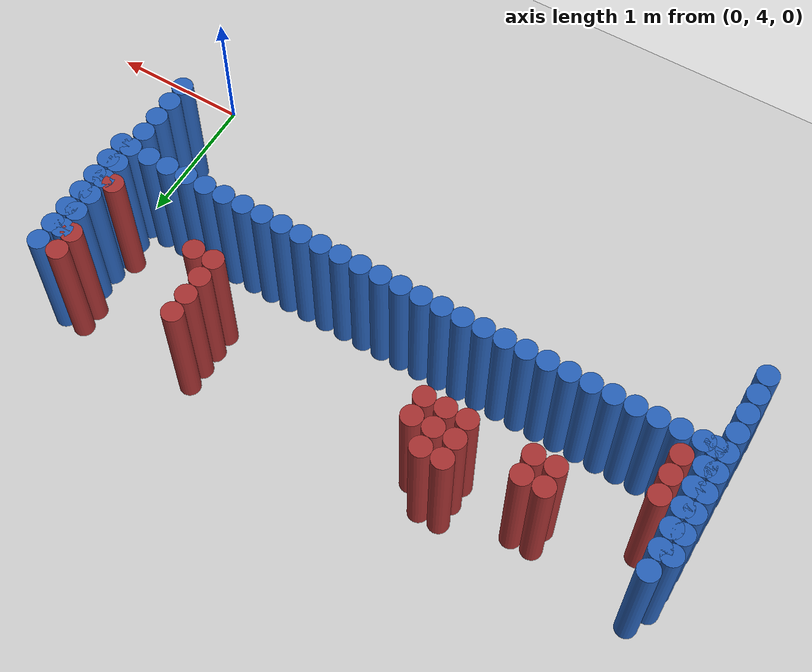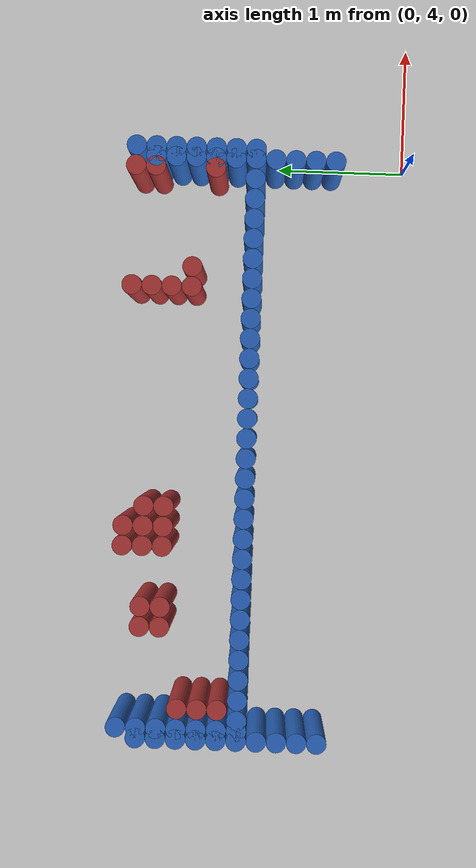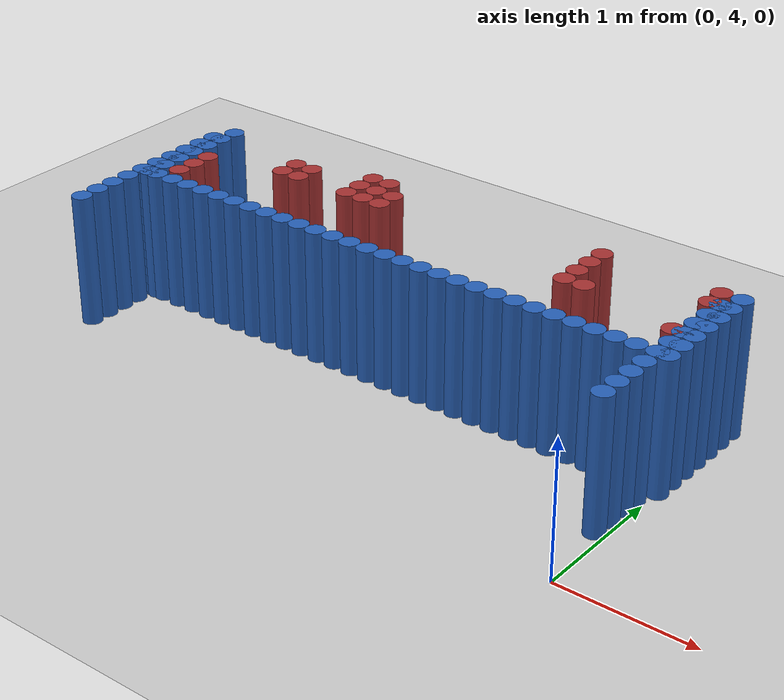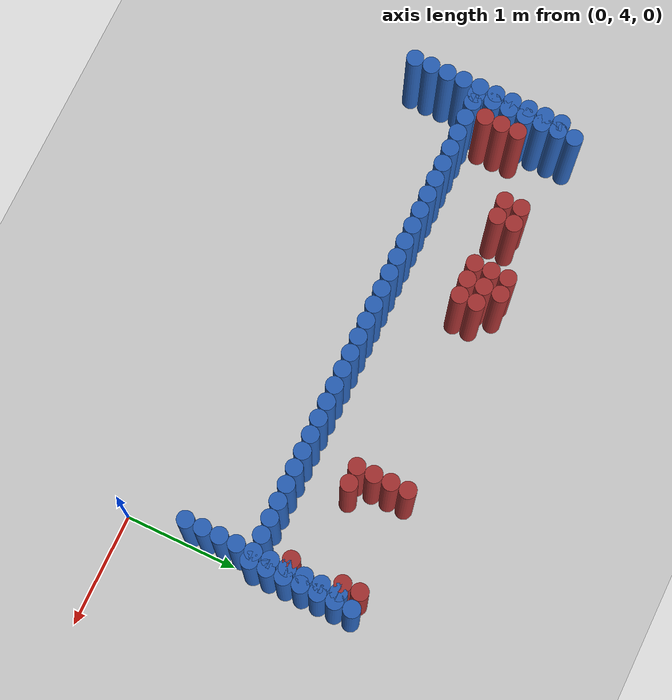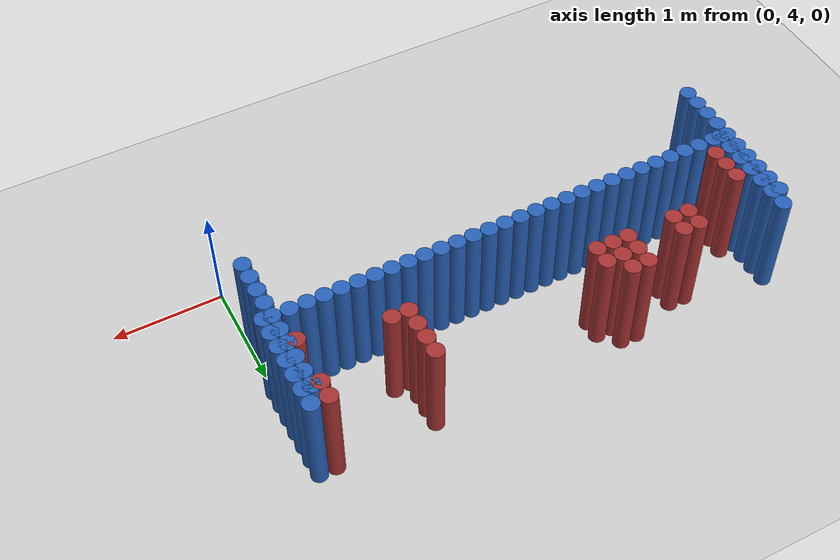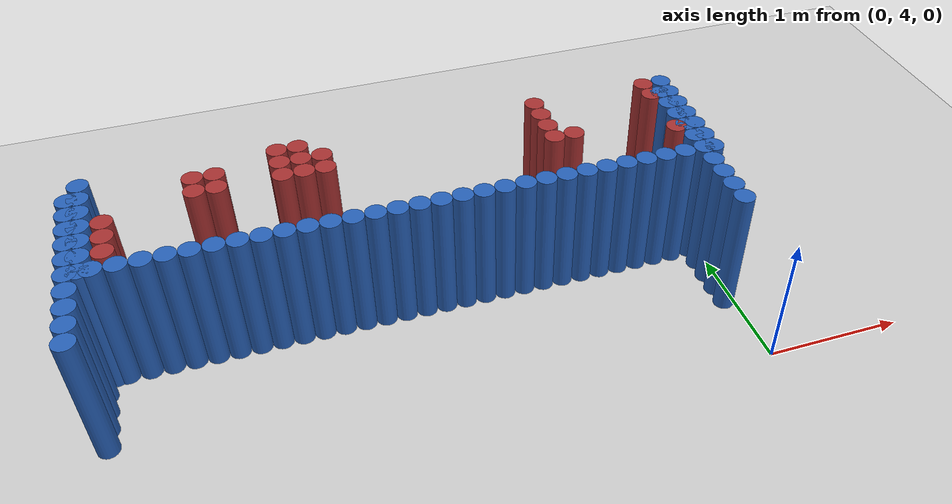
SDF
<sdf version="1.6">
 <world name="barn_world">
  <model name="ground_plane">
   <static>1</static>
   <link name="link">
    <collision name="collision">
     <geometry><plane><normal>0 0 1</normal><size>100 100</size></plane></geometry>
    </collision>
    <visual name="visual">
     <geometry><plane><normal>0 0 1</normal><size>100 100</size></plane></geometry>
     <material>
      <script><uri>file://media/materials/scripts/gazebo.material</uri><name>Gazebo/Grey</name></script>
     </material>
    </visual>
   </link>
  </model>
  <model name="unit_cylinder_88">
   <static>1</static>
   <pose>-0.0750 4.5750 0.5 0 0 0</pose>
   <link name="link">
    <collision name="collision">
     <geometry><cylinder><radius>0.075</radius><length>1</length></cylinder></geometry>
    </collision>
    <visual name="visual">
     <geometry><cylinder><radius>0.075</radius><length>1</length></cylinder></geometry>
     <material><ambient>0.152 0.379 0.72 1</ambient><diffuse>0.152 0.379 0.72 1</diffuse></material>
    </visual>
   </link>
  </model>
  <model name="unit_cylinder_89">
   <static>1</static>
   <pose>-4.4250 4.5750 0.5 0 0 0</pose>
   <link name="link">
    <collision name="collision">
     <geometry><cylinder><radius>0.075</radius><length>1</length></cylinder></geometry>
    </collision>
    <visual name="visual">
     <geometry><cylinder><radius>0.075</radius><length>1</length></cylinder></geometry>
     <material><ambient>0.152 0.379 0.72 1</ambient><diffuse>0.152 0.379 0.72 1</diffuse></material>
    </visual>
   </link>
  </model>
  <model name="unit_cylinder_90">
   <static>1</static>
   <pose>-0.0750 4.7250 0.5 0 0 0</pose>
   <link name="link">
    <collision name="collision">
     <geometry><cylinder><radius>0.075</radius><length>1</length></cylinder></geometry>
    </collision>
    <visual name="visual">
     <geometry><cylinder><radius>0.075</radius><length>1</length></cylinder></geometry>
     <material><ambient>0.152 0.379 0.72 1</ambient><diffuse>0.152 0.379 0.72 1</diffuse></material>
    </visual>
   </link>
  </model>
  <model name="unit_cylinder_91">
   <static>1</static>
   <pose>-4.4250 4.7250 0.5 0 0 0</pose>
   <link name="link">
    <collision name="collision">
     <geometry><cylinder><radius>0.075</radius><length>1</length></cylinder></geometry>
    </collision>
    <visual name="visual">
     <geometry><cylinder><radius>0.075</radius><length>1</length></cylinder></geometry>
     <material><ambient>0.152 0.379 0.72 1</ambient><diffuse>0.152 0.379 0.72 1</diffuse></material>
    </visual>
   </link>
  </model>
  <model name="unit_cylinder_92">
   <static>1</static>
   <pose>-0.0750 4.8750 0.5 0 0 0</pose>
   <link name="link">
    <collision name="collision">
     <geometry><cylinder><radius>0.075</radius><length>1</length></cylinder></geometry>
    </collision>
    <visual name="visual">
     <geometry><cylinder><radius>0.075</radius><length>1</length></cylinder></geometry>
     <material><ambient>0.152 0.379 0.72 1</ambient><diffuse>0.152 0.379 0.72 1</diffuse></material>
    </visual>
   </link>
  </model>
  <model name="unit_cylinder_93">
   <static>1</static>
   <pose>-4.4250 4.8750 0.5 0 0 0</pose>
   <link name="link">
    <collision name="collision">
     <geometry><cylinder><radius>0.075</radius><length>1</length></cylinder></geometry>
    </collision>
    <visual name="visual">
     <geometry><cylinder><radius>0.075</radius><length>1</length></cylinder></geometry>
     <material><ambient>0.152 0.379 0.72 1</ambient><diffuse>0.152 0.379 0.72 1</diffuse></material>
    </visual>
   </link>
  </model>
  <model name="unit_cylinder_94">
   <static>1</static>
   <pose>-0.0750 5.0250 0.5 0 0 0</pose>
   <link name="link">
    <collision name="collision">
     <geometry><cylinder><radius>0.075</radius><length>1</length></cylinder></geometry>
    </collision>
    <visual name="visual">
     <geometry><cylinder><radius>0.075</radius><length>1</length></cylinder></geometry>
     <material><ambient>0.152 0.379 0.72 1</ambient><diffuse>0.152 0.379 0.72 1</diffuse></material>
    </visual>
   </link>
  </model>
  <model name="unit_cylinder_95">
   <static>1</static>
   <pose>-4.4250 5.0250 0.5 0 0 0</pose>
   <link name="link">
    <collision name="collision">
     <geometry><cylinder><radius>0.075</radius><length>1</length></cylinder></geometry>
    </collision>
    <visual name="visual">
     <geometry><cylinder><radius>0.075</radius><length>1</length></cylinder></geometry>
     <material><ambient>0.152 0.379 0.72 1</ambient><diffuse>0.152 0.379 0.72 1</diffuse></material>
    </visual>
   </link>
  </model>
  <model name="unit_cylinder_96">
   <static>1</static>
   <pose>-0.0750 5.1750 0.5 0 0 0</pose>
   <link name="link">
    <collision name="collision">
     <geometry><cylinder><radius>0.075</radius><length>1</length></cylinder></geometry>
    </collision>
    <visual name="visual">
     <geometry><cylinder><radius>0.075</radius><length>1</length></cylinder></geometry>
     <material><ambient>0.152 0.379 0.72 1</ambient><diffuse>0.152 0.379 0.72 1</diffuse></material>
    </visual>
   </link>
  </model>
  <model name="unit_cylinder_97">
   <static>1</static>
   <pose>-0.2250 5.1750 0.5 0 0 0</pose>
   <link name="link">
    <collision name="collision">
     <geometry><cylinder><radius>0.075</radius><length>1</length></cylinder></geometry>
    </collision>
    <visual name="visual">
     <geometry><cylinder><radius>0.075</radius><length>1</length></cylinder></geometry>
     <material><ambient>0.152 0.379 0.72 1</ambient><diffuse>0.152 0.379 0.72 1</diffuse></material>
    </visual>
   </link>
  </model>
  <model name="unit_cylinder_98">
   <static>1</static>
   <pose>-0.3750 5.1750 0.5 0 0 0</pose>
   <link name="link">
    <collision name="collision">
     <geometry><cylinder><radius>0.075</radius><length>1</length></cylinder></geometry>
    </collision>
    <visual name="visual">
     <geometry><cylinder><radius>0.075</radius><length>1</length></cylinder></geometry>
     <material><ambient>0.152 0.379 0.72 1</ambient><diffuse>0.152 0.379 0.72 1</diffuse></material>
    </visual>
   </link>
  </model>
  <model name="unit_cylinder_99">
   <static>1</static>
   <pose>-0.5250 5.1750 0.5 0 0 0</pose>
   <link name="link">
    <collision name="collision">
     <geometry><cylinder><radius>0.075</radius><length>1</length></cylinder></geometry>
    </collision>
    <visual name="visual">
     <geometry><cylinder><radius>0.075</radius><length>1</length></cylinder></geometry>
     <material><ambient>0.152 0.379 0.72 1</ambient><diffuse>0.152 0.379 0.72 1</diffuse></material>
    </visual>
   </link>
  </model>
  <model name="unit_cylinder_100">
   <static>1</static>
   <pose>-0.6750 5.1750 0.5 0 0 0</pose>
   <link name="link">
    <collision name="collision">
     <geometry><cylinder><radius>0.075</radius><length>1</length></cylinder></geometry>
    </collision>
    <visual name="visual">
     <geometry><cylinder><radius>0.075</radius><length>1</length></cylinder></geometry>
     <material><ambient>0.152 0.379 0.72 1</ambient><diffuse>0.152 0.379 0.72 1</diffuse></material>
    </visual>
   </link>
  </model>
  <model name="unit_cylinder_101">
   <static>1</static>
   <pose>-0.8250 5.1750 0.5 0 0 0</pose>
   <link name="link">
    <collision name="collision">
     <geometry><cylinder><radius>0.075</radius><length>1</length></cylinder></geometry>
    </collision>
    <visual name="visual">
     <geometry><cylinder><radius>0.075</radius><length>1</length></cylinder></geometry>
     <material><ambient>0.152 0.379 0.72 1</ambient><diffuse>0.152 0.379 0.72 1</diffuse></material>
    </visual>
   </link>
  </model>
  <model name="unit_cylinder_102">
   <static>1</static>
   <pose>-0.9750 5.1750 0.5 0 0 0</pose>
   <link name="link">
    <collision name="collision">
     <geometry><cylinder><radius>0.075</radius><length>1</length></cylinder></geometry>
    </collision>
    <visual name="visual">
     <geometry><cylinder><radius>0.075</radius><length>1</length></cylinder></geometry>
     <material><ambient>0.152 0.379 0.72 1</ambient><diffuse>0.152 0.379 0.72 1</diffuse></material>
    </visual>
   </link>
  </model>
  <model name="unit_cylinder_103">
   <static>1</static>
   <pose>-1.1250 5.1750 0.5 0 0 0</pose>
   <link name="link">
    <collision name="collision">
     <geometry><cylinder><radius>0.075</radius><length>1</length></cylinder></geometry>
    </collision>
    <visual name="visual">
     <geometry><cylinder><radius>0.075</radius><length>1</length></cylinder></geometry>
     <material><ambient>0.152 0.379 0.72 1</ambient><diffuse>0.152 0.379 0.72 1</diffuse></material>
    </visual>
   </link>
  </model>
  <model name="unit_cylinder_104">
   <static>1</static>
   <pose>-1.2750 5.1750 0.5 0 0 0</pose>
   <link name="link">
    <collision name="collision">
     <geometry><cylinder><radius>0.075</radius><length>1</length></cylinder></geometry>
    </collision>
    <visual name="visual">
     <geometry><cylinder><radius>0.075</radius><length>1</length></cylinder></geometry>
     <material><ambient>0.152 0.379 0.72 1</ambient><diffuse>0.152 0.379 0.72 1</diffuse></material>
    </visual>
   </link>
  </model>
  <model name="unit_cylinder_105">
   <static>1</static>
   <pose>-1.4250 5.1750 0.5 0 0 0</pose>
   <link name="link">
    <collision name="collision">
     <geometry><cylinder><radius>0.075</radius><length>1</length></cylinder></geometry>
    </collision>
    <visual name="visual">
     <geometry><cylinder><radius>0.075</radius><length>1</length></cylinder></geometry>
     <material><ambient>0.152 0.379 0.72 1</ambient><diffuse>0.152 0.379 0.72 1</diffuse></material>
    </visual>
   </link>
  </model>
  <model name="unit_cylinder_106">
   <static>1</static>
   <pose>-1.5750 5.1750 0.5 0 0 0</pose>
   <link name="link">
    <collision name="collision">
     <geometry><cylinder><radius>0.075</radius><length>1</length></cylinder></geometry>
    </collision>
    <visual name="visual">
     <geometry><cylinder><radius>0.075</radius><length>1</length></cylinder></geometry>
     <material><ambient>0.152 0.379 0.72 1</ambient><diffuse>0.152 0.379 0.72 1</diffuse></material>
    </visual>
   </link>
  </model>
  <model name="unit_cylinder_107">
   <static>1</static>
   <pose>-1.7250 5.1750 0.5 0 0 0</pose>
   <link name="link">
    <collision name="collision">
     <geometry><cylinder><radius>0.075</radius><length>1</length></cylinder></geometry>
    </collision>
    <visual name="visual">
     <geometry><cylinder><radius>0.075</radius><length>1</length></cylinder></geometry>
     <material><ambient>0.152 0.379 0.72 1</ambient><diffuse>0.152 0.379 0.72 1</diffuse></material>
    </visual>
   </link>
  </model>
  <model name="unit_cylinder_108">
   <static>1</static>
   <pose>-1.8750 5.1750 0.5 0 0 0</pose>
   <link name="link">
    <collision name="collision">
     <geometry><cylinder><radius>0.075</radius><length>1</length></cylinder></geometry>
    </collision>
    <visual name="visual">
     <geometry><cylinder><radius>0.075</radius><length>1</length></cylinder></geometry>
     <material><ambient>0.152 0.379 0.72 1</ambient><diffuse>0.152 0.379 0.72 1</diffuse></material>
    </visual>
   </link>
  </model>
  <model name="unit_cylinder_109">
   <static>1</static>
   <pose>-2.0250 5.1750 0.5 0 0 0</pose>
   <link name="link">
    <collision name="collision">
     <geometry><cylinder><radius>0.075</radius><length>1</length></cylinder></geometry>
    </collision>
    <visual name="visual">
     <geometry><cylinder><radius>0.075</radius><length>1</length></cylinder></geometry>
     <material><ambient>0.152 0.379 0.72 1</ambient><diffuse>0.152 0.379 0.72 1</diffuse></material>
    </visual>
   </link>
  </model>
  <model name="unit_cylinder_110">
   <static>1</static>
   <pose>-2.1750 5.1750 0.5 0 0 0</pose>
   <link name="link">
    <collision name="collision">
     <geometry><cylinder><radius>0.075</radius><length>1</length></cylinder></geometry>
    </collision>
    <visual name="visual">
     <geometry><cylinder><radius>0.075</radius><length>1</length></cylinder></geometry>
     <material><ambient>0.152 0.379 0.72 1</ambient><diffuse>0.152 0.379 0.72 1</diffuse></material>
    </visual>
   </link>
  </model>
  <model name="unit_cylinder_111">
   <static>1</static>
   <pose>-2.3250 5.1750 0.5 0 0 0</pose>
   <link name="link">
    <collision name="collision">
     <geometry><cylinder><radius>0.075</radius><length>1</length></cylinder></geometry>
    </collision>
    <visual name="visual">
     <geometry><cylinder><radius>0.075</radius><length>1</length></cylinder></geometry>
     <material><ambient>0.152 0.379 0.72 1</ambient><diffuse>0.152 0.379 0.72 1</diffuse></material>
    </visual>
   </link>
  </model>
  <model name="unit_cylinder_112">
   <static>1</static>
   <pose>-2.4750 5.1750 0.5 0 0 0</pose>
   <link name="link">
    <collision name="collision">
     <geometry><cylinder><radius>0.075</radius><length>1</length></cylinder></geometry>
    </collision>
    <visual name="visual">
     <geometry><cylinder><radius>0.075</radius><length>1</length></cylinder></geometry>
     <material><ambient>0.152 0.379 0.72 1</ambient><diffuse>0.152 0.379 0.72 1</diffuse></material>
    </visual>
   </link>
  </model>
  <model name="unit_cylinder_113">
   <static>1</static>
   <pose>-2.6250 5.1750 0.5 0 0 0</pose>
   <link name="link">
    <collision name="collision">
     <geometry><cylinder><radius>0.075</radius><length>1</length></cylinder></geometry>
    </collision>
    <visual name="visual">
     <geometry><cylinder><radius>0.075</radius><length>1</length></cylinder></geometry>
     <material><ambient>0.152 0.379 0.72 1</ambient><diffuse>0.152 0.379 0.72 1</diffuse></material>
    </visual>
   </link>
  </model>
  <model name="unit_cylinder_114">
   <static>1</static>
   <pose>-2.7750 5.1750 0.5 0 0 0</pose>
   <link name="link">
    <collision name="collision">
     <geometry><cylinder><radius>0.075</radius><length>1</length></cylinder></geometry>
    </collision>
    <visual name="visual">
     <geometry><cylinder><radius>0.075</radius><length>1</length></cylinder></geometry>
     <material><ambient>0.152 0.379 0.72 1</ambient><diffuse>0.152 0.379 0.72 1</diffuse></material>
    </visual>
   </link>
  </model>
  <model name="unit_cylinder_115">
   <static>1</static>
   <pose>-2.9250 5.1750 0.5 0 0 0</pose>
   <link name="link">
    <collision name="collision">
     <geometry><cylinder><radius>0.075</radius><length>1</length></cylinder></geometry>
    </collision>
    <visual name="visual">
     <geometry><cylinder><radius>0.075</radius><length>1</length></cylinder></geometry>
     <material><ambient>0.152 0.379 0.72 1</ambient><diffuse>0.152 0.379 0.72 1</diffuse></material>
    </visual>
   </link>
  </model>
  <model name="unit_cylinder_116">
   <static>1</static>
   <pose>-3.0750 5.1750 0.5 0 0 0</pose>
   <link name="link">
    <collision name="collision">
     <geometry><cylinder><radius>0.075</radius><length>1</length></cylinder></geometry>
    </collision>
    <visual name="visual">
     <geometry><cylinder><radius>0.075</radius><length>1</length></cylinder></geometry>
     <material><ambient>0.152 0.379 0.72 1</ambient><diffuse>0.152 0.379 0.72 1</diffuse></material>
    </visual>
   </link>
  </model>
  <model name="unit_cylinder_117">
   <static>1</static>
   <pose>-3.2250 5.1750 0.5 0 0 0</pose>
   <link name="link">
    <collision name="collision">
     <geometry><cylinder><radius>0.075</radius><length>1</length></cylinder></geometry>
    </collision>
    <visual name="visual">
     <geometry><cylinder><radius>0.075</radius><length>1</length></cylinder></geometry>
     <material><ambient>0.152 0.379 0.72 1</ambient><diffuse>0.152 0.379 0.72 1</diffuse></material>
    </visual>
   </link>
  </model>
  <model name="unit_cylinder_118">
   <static>1</static>
   <pose>-3.3750 5.1750 0.5 0 0 0</pose>
   <link name="link">
    <collision name="collision">
     <geometry><cylinder><radius>0.075</radius><length>1</length></cylinder></geometry>
    </collision>
    <visual name="visual">
     <geometry><cylinder><radius>0.075</radius><length>1</length></cylinder></geometry>
     <material><ambient>0.152 0.379 0.72 1</ambient><diffuse>0.152 0.379 0.72 1</diffuse></material>
    </visual>
   </link>
  </model>
  <model name="unit_cylinder_119">
   <static>1</static>
   <pose>-3.5250 5.1750 0.5 0 0 0</pose>
   <link name="link">
    <collision name="collision">
     <geometry><cylinder><radius>0.075</radius><length>1</length></cylinder></geometry>
    </collision>
    <visual name="visual">
     <geometry><cylinder><radius>0.075</radius><length>1</length></cylinder></geometry>
     <material><ambient>0.152 0.379 0.72 1</ambient><diffuse>0.152 0.379 0.72 1</diffuse></material>
    </visual>
   </link>
  </model>
  <model name="unit_cylinder_120">
   <static>1</static>
   <pose>-3.6750 5.1750 0.5 0 0 0</pose>
   <link name="link">
    <collision name="collision">
     <geometry><cylinder><radius>0.075</radius><length>1</length></cylinder></geometry>
    </collision>
    <visual name="visual">
     <geometry><cylinder><radius>0.075</radius><length>1</length></cylinder></geometry>
     <material><ambient>0.152 0.379 0.72 1</ambient><diffuse>0.152 0.379 0.72 1</diffuse></material>
    </visual>
   </link>
  </model>
  <model name="unit_cylinder_121">
   <static>1</static>
   <pose>-3.8250 5.1750 0.5 0 0 0</pose>
   <link name="link">
    <collision name="collision">
     <geometry><cylinder><radius>0.075</radius><length>1</length></cylinder></geometry>
    </collision>
    <visual name="visual">
     <geometry><cylinder><radius>0.075</radius><length>1</length></cylinder></geometry>
     <material><ambient>0.152 0.379 0.72 1</ambient><diffuse>0.152 0.379 0.72 1</diffuse></material>
    </visual>
   </link>
  </model>
  <model name="unit_cylinder_122">
   <static>1</static>
   <pose>-3.9750 5.1750 0.5 0 0 0</pose>
   <link name="link">
    <collision name="collision">
     <geometry><cylinder><radius>0.075</radius><length>1</length></cylinder></geometry>
    </collision>
    <visual name="visual">
     <geometry><cylinder><radius>0.075</radius><length>1</length></cylinder></geometry>
     <material><ambient>0.152 0.379 0.72 1</ambient><diffuse>0.152 0.379 0.72 1</diffuse></material>
    </visual>
   </link>
  </model>
  <model name="unit_cylinder_123">
   <static>1</static>
   <pose>-4.1250 5.1750 0.5 0 0 0</pose>
   <link name="link">
    <collision name="collision">
     <geometry><cylinder><radius>0.075</radius><length>1</length></cylinder></geometry>
    </collision>
    <visual name="visual">
     <geometry><cylinder><radius>0.075</radius><length>1</length></cylinder></geometry>
     <material><ambient>0.152 0.379 0.72 1</ambient><diffuse>0.152 0.379 0.72 1</diffuse></material>
    </visual>
   </link>
  </model>
  <model name="unit_cylinder_124">
   <static>1</static>
   <pose>-4.2750 5.1750 0.5 0 0 0</pose>
   <link name="link">
    <collision name="collision">
     <geometry><cylinder><radius>0.075</radius><length>1</length></cylinder></geometry>
    </collision>
    <visual name="visual">
     <geometry><cylinder><radius>0.075</radius><length>1</length></cylinder></geometry>
     <material><ambient>0.152 0.379 0.72 1</ambient><diffuse>0.152 0.379 0.72 1</diffuse></material>
    </visual>
   </link>
  </model>
  <model name="unit_cylinder_125">
   <static>1</static>
   <pose>-4.4250 5.1750 0.5 0 0 0</pose>
   <link name="link">
    <collision name="collision">
     <geometry><cylinder><radius>0.075</radius><length>1</length></cylinder></geometry>
    </collision>
    <visual name="visual">
     <geometry><cylinder><radius>0.075</radius><length>1</length></cylinder></geometry>
     <material><ambient>0.152 0.379 0.72 1</ambient><diffuse>0.152 0.379 0.72 1</diffuse></material>
    </visual>
   </link>
  </model>
  <model name="unit_cylinder_126">
   <static>1</static>
   <pose>-4.3500 5.1750 0.5 0 0 0</pose>
   <link name="link">
    <collision name="collision">
     <geometry><cylinder><radius>0.075</radius><length>1</length></cylinder></geometry>
    </collision>
    <visual name="visual">
     <geometry><cylinder><radius>0.075</radius><length>1</length></cylinder></geometry>
     <material><ambient>0.152 0.379 0.72 1</ambient><diffuse>0.152 0.379 0.72 1</diffuse></material>
    </visual>
   </link>
  </model>
  <model name="unit_cylinder_127">
   <static>1</static>
   <pose>-4.3500 5.3250 0.5 0 0 0</pose>
   <link name="link">
    <collision name="collision">
     <geometry><cylinder><radius>0.075</radius><length>1</length></cylinder></geometry>
    </collision>
    <visual name="visual">
     <geometry><cylinder><radius>0.075</radius><length>1</length></cylinder></geometry>
     <material><ambient>0.152 0.379 0.72 1</ambient><diffuse>0.152 0.379 0.72 1</diffuse></material>
    </visual>
   </link>
  </model>
  <model name="unit_cylinder_128">
   <static>1</static>
   <pose>-4.3500 5.4750 0.5 0 0 0</pose>
   <link name="link">
    <collision name="collision">
     <geometry><cylinder><radius>0.075</radius><length>1</length></cylinder></geometry>
    </collision>
    <visual name="visual">
     <geometry><cylinder><radius>0.075</radius><length>1</length></cylinder></geometry>
     <material><ambient>0.152 0.379 0.72 1</ambient><diffuse>0.152 0.379 0.72 1</diffuse></material>
    </visual>
   </link>
  </model>
  <model name="unit_cylinder_129">
   <static>1</static>
   <pose>-4.3500 5.6250 0.5 0 0 0</pose>
   <link name="link">
    <collision name="collision">
     <geometry><cylinder><radius>0.075</radius><length>1</length></cylinder></geometry>
    </collision>
    <visual name="visual">
     <geometry><cylinder><radius>0.075</radius><length>1</length></cylinder></geometry>
     <material><ambient>0.152 0.379 0.72 1</ambient><diffuse>0.152 0.379 0.72 1</diffuse></material>
    </visual>
   </link>
  </model>
  <model name="unit_cylinder_130">
   <static>1</static>
   <pose>-4.3500 5.7750 0.5 0 0 0</pose>
   <link name="link">
    <collision name="collision">
     <geometry><cylinder><radius>0.075</radius><length>1</length></cylinder></geometry>
    </collision>
    <visual name="visual">
     <geometry><cylinder><radius>0.075</radius><length>1</length></cylinder></geometry>
     <material><ambient>0.152 0.379 0.72 1</ambient><diffuse>0.152 0.379 0.72 1</diffuse></material>
    </visual>
   </link>
  </model>
  <model name="unit_cylinder_131">
   <static>1</static>
   <pose>-4.3500 5.9250 0.5 0 0 0</pose>
   <link name="link">
    <collision name="collision">
     <geometry><cylinder><radius>0.075</radius><length>1</length></cylinder></geometry>
    </collision>
    <visual name="visual">
     <geometry><cylinder><radius>0.075</radius><length>1</length></cylinder></geometry>
     <material><ambient>0.152 0.379 0.72 1</ambient><diffuse>0.152 0.379 0.72 1</diffuse></material>
    </visual>
   </link>
  </model>
  <model name="unit_cylinder_132">
   <static>1</static>
   <pose>-4.3500 6.0750 0.5 0 0 0</pose>
   <link name="link">
    <collision name="collision">
     <geometry><cylinder><radius>0.075</radius><length>1</length></cylinder></geometry>
    </collision>
    <visual name="visual">
     <geometry><cylinder><radius>0.075</radius><length>1</length></cylinder></geometry>
     <material><ambient>0.152 0.379 0.72 1</ambient><diffuse>0.152 0.379 0.72 1</diffuse></material>
    </visual>
   </link>
  </model>
  <model name="unit_cylinder_156">
   <static>1</static>
   <pose>-4.2000 5.3250 0.5 0 0 0</pose>
   <link name="link">
    <collision name="collision">
     <geometry><cylinder><radius>0.075</radius><length>1</length></cylinder></geometry>
    </collision>
    <visual name="visual">
     <geometry><cylinder><radius>0.075</radius><length>1</length></cylinder></geometry>
     <material><ambient>0.648 0.192 0.192 1</ambient><diffuse>0.648 0.192 0.192 1</diffuse></material>
    </visual>
   </link>
  </model>
  <model name="unit_cylinder_157">
   <static>1</static>
   <pose>-4.2000 5.4750 0.5 0 0 0</pose>
   <link name="link">
    <collision name="collision">
     <geometry><cylinder><radius>0.075</radius><length>1</length></cylinder></geometry>
    </collision>
    <visual name="visual">
     <geometry><cylinder><radius>0.075</radius><length>1</length></cylinder></geometry>
     <material><ambient>0.648 0.192 0.192 1</ambient><diffuse>0.648 0.192 0.192 1</diffuse></material>
    </visual>
   </link>
  </model>
  <model name="unit_cylinder_158">
   <static>1</static>
   <pose>-4.2000 5.6250 0.5 0 0 0</pose>
   <link name="link">
    <collision name="collision">
     <geometry><cylinder><radius>0.075</radius><length>1</length></cylinder></geometry>
    </collision>
    <visual name="visual">
     <geometry><cylinder><radius>0.075</radius><length>1</length></cylinder></geometry>
     <material><ambient>0.648 0.192 0.192 1</ambient><diffuse>0.648 0.192 0.192 1</diffuse></material>
    </visual>
   </link>
  </model>
  <model name="unit_cylinder_198">
   <static>1</static>
   <pose>-3.6000 5.7750 0.5 0 0 0</pose>
   <link name="link">
    <collision name="collision">
     <geometry><cylinder><radius>0.075</radius><length>1</length></cylinder></geometry>
    </collision>
    <visual name="visual">
     <geometry><cylinder><radius>0.075</radius><length>1</length></cylinder></geometry>
     <material><ambient>0.648 0.192 0.192 1</ambient><diffuse>0.648 0.192 0.192 1</diffuse></material>
    </visual>
   </link>
  </model>
  <model name="unit_cylinder_199">
   <static>1</static>
   <pose>-3.6000 5.9250 0.5 0 0 0</pose>
   <link name="link">
    <collision name="collision">
     <geometry><cylinder><radius>0.075</radius><length>1</length></cylinder></geometry>
    </collision>
    <visual name="visual">
     <geometry><cylinder><radius>0.075</radius><length>1</length></cylinder></geometry>
     <material><ambient>0.648 0.192 0.192 1</ambient><diffuse>0.648 0.192 0.192 1</diffuse></material>
    </visual>
   </link>
  </model>
  <model name="unit_cylinder_205">
   <static>1</static>
   <pose>-3.4500 5.7750 0.5 0 0 0</pose>
   <link name="link">
    <collision name="collision">
     <geometry><cylinder><radius>0.075</radius><length>1</length></cylinder></geometry>
    </collision>
    <visual name="visual">
     <geometry><cylinder><radius>0.075</radius><length>1</length></cylinder></geometry>
     <material><ambient>0.648 0.192 0.192 1</ambient><diffuse>0.648 0.192 0.192 1</diffuse></material>
    </visual>
   </link>
  </model>
  <model name="unit_cylinder_206">
   <static>1</static>
   <pose>-3.4500 5.9250 0.5 0 0 0</pose>
   <link name="link">
    <collision name="collision">
     <geometry><cylinder><radius>0.075</radius><length>1</length></cylinder></geometry>
    </collision>
    <visual name="visual">
     <geometry><cylinder><radius>0.075</radius><length>1</length></cylinder></geometry>
     <material><ambient>0.648 0.192 0.192 1</ambient><diffuse>0.648 0.192 0.192 1</diffuse></material>
    </visual>
   </link>
  </model>
  <model name="unit_cylinder_228">
   <static>1</static>
   <pose>-3.0000 5.7750 0.5 0 0 0</pose>
   <link name="link">
    <collision name="collision">
     <geometry><cylinder><radius>0.075</radius><length>1</length></cylinder></geometry>
    </collision>
    <visual name="visual">
     <geometry><cylinder><radius>0.075</radius><length>1</length></cylinder></geometry>
     <material><ambient>0.648 0.192 0.192 1</ambient><diffuse>0.648 0.192 0.192 1</diffuse></material>
    </visual>
   </link>
  </model>
  <model name="unit_cylinder_229">
   <static>1</static>
   <pose>-3.0000 5.9250 0.5 0 0 0</pose>
   <link name="link">
    <collision name="collision">
     <geometry><cylinder><radius>0.075</radius><length>1</length></cylinder></geometry>
    </collision>
    <visual name="visual">
     <geometry><cylinder><radius>0.075</radius><length>1</length></cylinder></geometry>
     <material><ambient>0.648 0.192 0.192 1</ambient><diffuse>0.648 0.192 0.192 1</diffuse></material>
    </visual>
   </link>
  </model>
  <model name="unit_cylinder_230">
   <static>1</static>
   <pose>-3.0000 6.0750 0.5 0 0 0</pose>
   <link name="link">
    <collision name="collision">
     <geometry><cylinder><radius>0.075</radius><length>1</length></cylinder></geometry>
    </collision>
    <visual name="visual">
     <geometry><cylinder><radius>0.075</radius><length>1</length></cylinder></geometry>
     <material><ambient>0.648 0.192 0.192 1</ambient><diffuse>0.648 0.192 0.192 1</diffuse></material>
    </visual>
   </link>
  </model>
  <model name="unit_cylinder_233">
   <static>1</static>
   <pose>-2.8500 5.7750 0.5 0 0 0</pose>
   <link name="link">
    <collision name="collision">
     <geometry><cylinder><radius>0.075</radius><length>1</length></cylinder></geometry>
    </collision>
    <visual name="visual">
     <geometry><cylinder><radius>0.075</radius><length>1</length></cylinder></geometry>
     <material><ambient>0.648 0.192 0.192 1</ambient><diffuse>0.648 0.192 0.192 1</diffuse></material>
    </visual>
   </link>
  </model>
  <model name="unit_cylinder_234">
   <static>1</static>
   <pose>-2.8500 5.9250 0.5 0 0 0</pose>
   <link name="link">
    <collision name="collision">
     <geometry><cylinder><radius>0.075</radius><length>1</length></cylinder></geometry>
    </collision>
    <visual name="visual">
     <geometry><cylinder><radius>0.075</radius><length>1</length></cylinder></geometry>
     <material><ambient>0.648 0.192 0.192 1</ambient><diffuse>0.648 0.192 0.192 1</diffuse></material>
    </visual>
   </link>
  </model>
  <model name="unit_cylinder_235">
   <static>1</static>
   <pose>-2.8500 6.0750 0.5 0 0 0</pose>
   <link name="link">
    <collision name="collision">
     <geometry><cylinder><radius>0.075</radius><length>1</length></cylinder></geometry>
    </collision>
    <visual name="visual">
     <geometry><cylinder><radius>0.075</radius><length>1</length></cylinder></geometry>
     <material><ambient>0.648 0.192 0.192 1</ambient><diffuse>0.648 0.192 0.192 1</diffuse></material>
    </visual>
   </link>
  </model>
  <model name="unit_cylinder_239">
   <static>1</static>
   <pose>-2.7000 5.7750 0.5 0 0 0</pose>
   <link name="link">
    <collision name="collision">
     <geometry><cylinder><radius>0.075</radius><length>1</length></cylinder></geometry>
    </collision>
    <visual name="visual">
     <geometry><cylinder><radius>0.075</radius><length>1</length></cylinder></geometry>
     <material><ambient>0.648 0.192 0.192 1</ambient><diffuse>0.648 0.192 0.192 1</diffuse></material>
    </visual>
   </link>
  </model>
  <model name="unit_cylinder_240">
   <static>1</static>
   <pose>-2.7000 5.9250 0.5 0 0 0</pose>
   <link name="link">
    <collision name="collision">
     <geometry><cylinder><radius>0.075</radius><length>1</length></cylinder></geometry>
    </collision>
    <visual name="visual">
     <geometry><cylinder><radius>0.075</radius><length>1</length></cylinder></geometry>
     <material><ambient>0.648 0.192 0.192 1</ambient><diffuse>0.648 0.192 0.192 1</diffuse></material>
    </visual>
   </link>
  </model>
  <model name="unit_cylinder_282">
   <static>1</static>
   <pose>-1.0500 5.6250 0.5 0 0 0</pose>
   <link name="link">
    <collision name="collision">
     <geometry><cylinder><radius>0.075</radius><length>1</length></cylinder></geometry>
    </collision>
    <visual name="visual">
     <geometry><cylinder><radius>0.075</radius><length>1</length></cylinder></geometry>
     <material><ambient>0.648 0.192 0.192 1</ambient><diffuse>0.648 0.192 0.192 1</diffuse></material>
    </visual>
   </link>
  </model>
  <model name="unit_cylinder_283">
   <static>1</static>
   <pose>-1.0500 5.7750 0.5 0 0 0</pose>
   <link name="link">
    <collision name="collision">
     <geometry><cylinder><radius>0.075</radius><length>1</length></cylinder></geometry>
    </collision>
    <visual name="visual">
     <geometry><cylinder><radius>0.075</radius><length>1</length></cylinder></geometry>
     <material><ambient>0.648 0.192 0.192 1</ambient><diffuse>0.648 0.192 0.192 1</diffuse></material>
    </visual>
   </link>
  </model>
  <model name="unit_cylinder_284">
   <static>1</static>
   <pose>-1.0500 5.9250 0.5 0 0 0</pose>
   <link name="link">
    <collision name="collision">
     <geometry><cylinder><radius>0.075</radius><length>1</length></cylinder></geometry>
    </collision>
    <visual name="visual">
     <geometry><cylinder><radius>0.075</radius><length>1</length></cylinder></geometry>
     <material><ambient>0.648 0.192 0.192 1</ambient><diffuse>0.648 0.192 0.192 1</diffuse></material>
    </visual>
   </link>
  </model>
  <model name="unit_cylinder_285">
   <static>1</static>
   <pose>-1.0500 6.0750 0.5 0 0 0</pose>
   <link name="link">
    <collision name="collision">
     <geometry><cylinder><radius>0.075</radius><length>1</length></cylinder></geometry>
    </collision>
    <visual name="visual">
     <geometry><cylinder><radius>0.075</radius><length>1</length></cylinder></geometry>
     <material><ambient>0.648 0.192 0.192 1</ambient><diffuse>0.648 0.192 0.192 1</diffuse></material>
    </visual>
   </link>
  </model>
  <model name="unit_cylinder_296">
   <static>1</static>
   <pose>-0.9000 5.6250 0.5 0 0 0</pose>
   <link name="link">
    <collision name="collision">
     <geometry><cylinder><radius>0.075</radius><length>1</length></cylinder></geometry>
    </collision>
    <visual name="visual">
     <geometry><cylinder><radius>0.075</radius><length>1</length></cylinder></geometry>
     <material><ambient>0.648 0.192 0.192 1</ambient><diffuse>0.648 0.192 0.192 1</diffuse></material>
    </visual>
   </link>
  </model>
  <model name="unit_cylinder_311">
   <static>1</static>
   <pose>-0.1500 5.4750 0.5 0 0 0</pose>
   <link name="link">
    <collision name="collision">
     <geometry><cylinder><radius>0.075</radius><length>1</length></cylinder></geometry>
    </collision>
    <visual name="visual">
     <geometry><cylinder><radius>0.075</radius><length>1</length></cylinder></geometry>
     <material><ambient>0.648 0.192 0.192 1</ambient><diffuse>0.648 0.192 0.192 1</diffuse></material>
    </visual>
   </link>
  </model>
  <model name="unit_cylinder_312">
   <static>1</static>
   <pose>-0.1500 5.9250 0.5 0 0 0</pose>
   <link name="link">
    <collision name="collision">
     <geometry><cylinder><radius>0.075</radius><length>1</length></cylinder></geometry>
    </collision>
    <visual name="visual">
     <geometry><cylinder><radius>0.075</radius><length>1</length></cylinder></geometry>
     <material><ambient>0.648 0.192 0.192 1</ambient><diffuse>0.648 0.192 0.192 1</diffuse></material>
    </visual>
   </link>
  </model>
  <model name="unit_cylinder_313">
   <static>1</static>
   <pose>-0.1500 6.0750 0.5 0 0 0</pose>
   <link name="link">
    <collision name="collision">
     <geometry><cylinder><radius>0.075</radius><length>1</length></cylinder></geometry>
    </collision>
    <visual name="visual">
     <geometry><cylinder><radius>0.075</radius><length>1</length></cylinder></geometry>
     <material><ambient>0.648 0.192 0.192 1</ambient><diffuse>0.648 0.192 0.192 1</diffuse></material>
    </visual>
   </link>
  </model>
  <model name="unit_cylinder_319">
   <static>1</static>
   <pose>0.0000 5.1750 0.5 0 0 0</pose>
   <link name="link">
    <collision name="collision">
     <geometry><cylinder><radius>0.075</radius><length>1</length></cylinder></geometry>
    </collision>
    <visual name="visual">
     <geometry><cylinder><radius>0.075</radius><length>1</length></cylinder></geometry>
     <material><ambient>0.152 0.379 0.72 1</ambient><diffuse>0.152 0.379 0.72 1</diffuse></material>
    </visual>
   </link>
  </model>
  <model name="unit_cylinder_320">
   <static>1</static>
   <pose>0.0000 5.3250 0.5 0 0 0</pose>
   <link name="link">
    <collision name="collision">
     <geometry><cylinder><radius>0.075</radius><length>1</length></cylinder></geometry>
    </collision>
    <visual name="visual">
     <geometry><cylinder><radius>0.075</radius><length>1</length></cylinder></geometry>
     <material><ambient>0.152 0.379 0.72 1</ambient><diffuse>0.152 0.379 0.72 1</diffuse></material>
    </visual>
   </link>
  </model>
  <model name="unit_cylinder_321">
   <static>1</static>
   <pose>0.0000 5.4750 0.5 0 0 0</pose>
   <link name="link">
    <collision name="collision">
     <geometry><cylinder><radius>0.075</radius><length>1</length></cylinder></geometry>
    </collision>
    <visual name="visual">
     <geometry><cylinder><radius>0.075</radius><length>1</length></cylinder></geometry>
     <material><ambient>0.152 0.379 0.72 1</ambient><diffuse>0.152 0.379 0.72 1</diffuse></material>
    </visual>
   </link>
  </model>
  <model name="unit_cylinder_322">
   <static>1</static>
   <pose>0.0000 5.6250 0.5 0 0 0</pose>
   <link name="link">
    <collision name="collision">
     <geometry><cylinder><radius>0.075</radius><length>1</length></cylinder></geometry>
    </collision>
    <visual name="visual">
     <geometry><cylinder><radius>0.075</radius><length>1</length></cylinder></geometry>
     <material><ambient>0.152 0.379 0.72 1</ambient><diffuse>0.152 0.379 0.72 1</diffuse></material>
    </visual>
   </link>
  </model>
  <model name="unit_cylinder_323">
   <static>1</static>
   <pose>0.0000 5.7750 0.5 0 0 0</pose>
   <link name="link">
    <collision name="collision">
     <geometry><cylinder><radius>0.075</radius><length>1</length></cylinder></geometry>
    </collision>
    <visual name="visual">
     <geometry><cylinder><radius>0.075</radius><length>1</length></cylinder></geometry>
     <material><ambient>0.152 0.379 0.72 1</ambient><diffuse>0.152 0.379 0.72 1</diffuse></material>
    </visual>
   </link>
  </model>
  <model name="unit_cylinder_324">
   <static>1</static>
   <pose>0.0000 5.9250 0.5 0 0 0</pose>
   <link name="link">
    <collision name="collision">
     <geometry><cylinder><radius>0.075</radius><length>1</length></cylinder></geometry>
    </collision>
    <visual name="visual">
     <geometry><cylinder><radius>0.075</radius><length>1</length></cylinder></geometry>
     <material><ambient>0.152 0.379 0.72 1</ambient><diffuse>0.152 0.379 0.72 1</diffuse></material>
    </visual>
   </link>
  </model>
  <model name="unit_cylinder_325">
   <static>1</static>
   <pose>0.0000 6.0750 0.5 0 0 0</pose>
   <link name="link">
    <collision name="collision">
     <geometry><cylinder><radius>0.075</radius><length>1</length></cylinder></geometry>
    </collision>
    <visual name="visual">
     <geometry><cylinder><radius>0.075</radius><length>1</length></cylinder></geometry>
     <material><ambient>0.152 0.379 0.72 1</ambient><diffuse>0.152 0.379 0.72 1</diffuse></material>
    </visual>
   </link>
  </model>
  <model name="unit_cylinder_379">
   <static>1</static>
   <pose>-0.0750 5.1750 0.5 0 0 0</pose>
   <link name="link">
    <collision name="collision">
     <geometry><cylinder><radius>0.075</radius><length>1</length></cylinder></geometry>
    </collision>
    <visual name="visual">
     <geometry><cylinder><radius>0.075</radius><length>1</length></cylinder></geometry>
     <material><ambient>0.152 0.379 0.72 1</ambient><diffuse>0.152 0.379 0.72 1</diffuse></material>
    </visual>
   </link>
  </model>
  <model name="unit_cylinder_380">
   <static>1</static>
   <pose>-4.4250 5.1750 0.5 0 0 0</pose>
   <link name="link">
    <collision name="collision">
     <geometry><cylinder><radius>0.075</radius><length>1</length></cylinder></geometry>
    </collision>
    <visual name="visual">
     <geometry><cylinder><radius>0.075</radius><length>1</length></cylinder></geometry>
     <material><ambient>0.152 0.379 0.72 1</ambient><diffuse>0.152 0.379 0.72 1</diffuse></material>
    </visual>
   </link>
  </model>
  <model name="unit_cylinder_381">
   <static>1</static>
   <pose>-0.0750 5.3250 0.5 0 0 0</pose>
   <link name="link">
    <collision name="collision">
     <geometry><cylinder><radius>0.075</radius><length>1</length></cylinder></geometry>
    </collision>
    <visual name="visual">
     <geometry><cylinder><radius>0.075</radius><length>1</length></cylinder></geometry>
     <material><ambient>0.152 0.379 0.72 1</ambient><diffuse>0.152 0.379 0.72 1</diffuse></material>
    </visual>
   </link>
  </model>
  <model name="unit_cylinder_382">
   <static>1</static>
   <pose>-4.4250 5.3250 0.5 0 0 0</pose>
   <link name="link">
    <collision name="collision">
     <geometry><cylinder><radius>0.075</radius><length>1</length></cylinder></geometry>
    </collision>
    <visual name="visual">
     <geometry><cylinder><radius>0.075</radius><length>1</length></cylinder></geometry>
     <material><ambient>0.152 0.379 0.72 1</ambient><diffuse>0.152 0.379 0.72 1</diffuse></material>
    </visual>
   </link>
  </model>
  <model name="unit_cylinder_383">
   <static>1</static>
   <pose>-0.0750 5.4750 0.5 0 0 0</pose>
   <link name="link">
    <collision name="collision">
     <geometry><cylinder><radius>0.075</radius><length>1</length></cylinder></geometry>
    </collision>
    <visual name="visual">
     <geometry><cylinder><radius>0.075</radius><length>1</length></cylinder></geometry>
     <material><ambient>0.152 0.379 0.72 1</ambient><diffuse>0.152 0.379 0.72 1</diffuse></material>
    </visual>
   </link>
  </model>
  <model name="unit_cylinder_384">
   <static>1</static>
   <pose>-4.4250 5.4750 0.5 0 0 0</pose>
   <link name="link">
    <collision name="collision">
     <geometry><cylinder><radius>0.075</radius><length>1</length></cylinder></geometry>
    </collision>
    <visual name="visual">
     <geometry><cylinder><radius>0.075</radius><length>1</length></cylinder></geometry>
     <material><ambient>0.152 0.379 0.72 1</ambient><diffuse>0.152 0.379 0.72 1</diffuse></material>
    </visual>
   </link>
  </model>
  <model name="unit_cylinder_385">
   <static>1</static>
   <pose>-0.0750 5.6250 0.5 0 0 0</pose>
   <link name="link">
    <collision name="collision">
     <geometry><cylinder><radius>0.075</radius><length>1</length></cylinder></geometry>
    </collision>
    <visual name="visual">
     <geometry><cylinder><radius>0.075</radius><length>1</length></cylinder></geometry>
     <material><ambient>0.152 0.379 0.72 1</ambient><diffuse>0.152 0.379 0.72 1</diffuse></material>
    </visual>
   </link>
  </model>
  <model name="unit_cylinder_386">
   <static>1</static>
   <pose>-4.4250 5.6250 0.5 0 0 0</pose>
   <link name="link">
    <collision name="collision">
     <geometry><cylinder><radius>0.075</radius><length>1</length></cylinder></geometry>
    </collision>
    <visual name="visual">
     <geometry><cylinder><radius>0.075</radius><length>1</length></cylinder></geometry>
     <material><ambient>0.152 0.379 0.72 1</ambient><diffuse>0.152 0.379 0.72 1</diffuse></material>
    </visual>
   </link>
  </model>
  <model name="unit_cylinder_387">
   <static>1</static>
   <pose>-0.0750 5.7750 0.5 0 0 0</pose>
   <link name="link">
    <collision name="collision">
     <geometry><cylinder><radius>0.075</radius><length>1</length></cylinder></geometry>
    </collision>
    <visual name="visual">
     <geometry><cylinder><radius>0.075</radius><length>1</length></cylinder></geometry>
     <material><ambient>0.152 0.379 0.72 1</ambient><diffuse>0.152 0.379 0.72 1</diffuse></material>
    </visual>
   </link>
  </model>
  <model name="unit_cylinder_388">
   <static>1</static>
   <pose>-4.4250 5.7750 0.5 0 0 0</pose>
   <link name="link">
    <collision name="collision">
     <geometry><cylinder><radius>0.075</radius><length>1</length></cylinder></geometry>
    </collision>
    <visual name="visual">
     <geometry><cylinder><radius>0.075</radius><length>1</length></cylinder></geometry>
     <material><ambient>0.152 0.379 0.72 1</ambient><diffuse>0.152 0.379 0.72 1</diffuse></material>
    </visual>
   </link>
  </model>
  <model name="unit_cylinder_389">
   <static>1</static>
   <pose>-0.0750 5.9250 0.5 0 0 0</pose>
   <link name="link">
    <collision name="collision">
     <geometry><cylinder><radius>0.075</radius><length>1</length></cylinder></geometry>
    </collision>
    <visual name="visual">
     <geometry><cylinder><radius>0.075</radius><length>1</length></cylinder></geometry>
     <material><ambient>0.152 0.379 0.72 1</ambient><diffuse>0.152 0.379 0.72 1</diffuse></material>
    </visual>
   </link>
  </model>
  <model name="unit_cylinder_390">
   <static>1</static>
   <pose>-4.4250 5.9250 0.5 0 0 0</pose>
   <link name="link">
    <collision name="collision">
     <geometry><cylinder><radius>0.075</radius><length>1</length></cylinder></geometry>
    </collision>
    <visual name="visual">
     <geometry><cylinder><radius>0.075</radius><length>1</length></cylinder></geometry>
     <material><ambient>0.152 0.379 0.72 1</ambient><diffuse>0.152 0.379 0.72 1</diffuse></material>
    </visual>
   </link>
  </model>
 </world>
</sdf>
